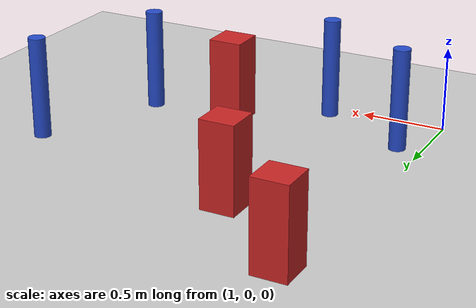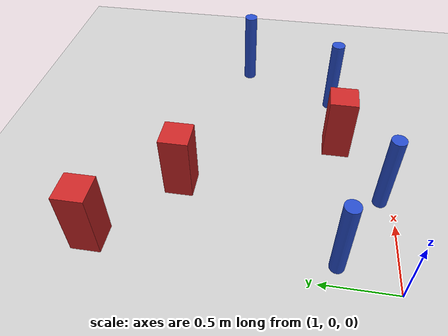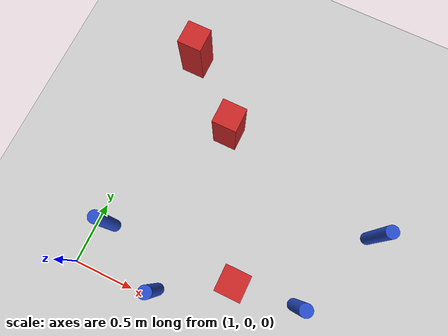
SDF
<sdf version="1.6">
 <world name="default">
  <model name="ground_plane">
   <static>1</static>
   <link name="link">
    <collision name="collision">
     <geometry><plane><normal>0 0 1</normal><size>100 100</size></plane></geometry>
     <surface><friction><ode><mu>100</mu><mu2>50</mu2></ode></friction></surface>
    </collision>
    <visual name="visual">
     <cast_shadows>0</cast_shadows>
     <geometry><plane><normal>0 0 1</normal><size>100 100</size></plane></geometry>
     <material>
      <ambient>1.0 1.0 1.0 1.0</ambient>
      <diffuse>0.8 0.8 0.8 1.0</diffuse>
      <specular>0.01 0.01 0.01 1.000000</specular>
     </material>
    </visual>
   </link>
  </model>
  <model name="pole_obstacle55">
   <static>true</static>
   <pose>2.70172302233 0.445536969924 -9.47619616065e-06 5.49618799738e-07 2.36310414074e-07 -1.55090534794e-07</pose>
   <link name="link">
    <pose>0 0 0.3 0 -0 0</pose>
    <inertial>
     <mass>1</mass>
     <inertia><ixx>0.145833</ixx><ixy>0</ixy><ixz>0</ixz><iyy>0.145833</iyy><iyz>0</iyz><izz>0.125</izz></inertia>
    </inertial>
    <collision name="collision">
     <geometry><cylinder><radius>0.05</radius><length>.6</length></cylinder></geometry>
    </collision>
    <visual name="visual">
     <geometry><cylinder><radius>0.05</radius><length>.6</length></cylinder></geometry>
     <material>
      <script><name>Gazebo/Blue</name><uri>file://media/materials/scripts/gazebo.material</uri></script>
     </material>
    </visual>
   </link>
  </model>
  <model name="square_post_obstacle87">
   <static>true</static>
   <pose>2.19317262747 0.392966858584 -6.11067671241e-07 -5.50515727128e-06 -8.79689657224e-07 2.37013304536e-05</pose>
   <link name="link">
    <pose>0 0 0.25 0 -0 0</pose>
    <inertial>
     <mass>100</mass>
     <inertia>
      <ixx>0.166667</ixx>
      <ixy>0</ixy>
      <ixz>0</ixz>
      <iyy>0.166667</iyy>
      <iyz>0</iyz>
      <izz>0.166667</izz>
     </inertia>
    </inertial>
    <collision name="collision"><geometry><box><size>.2 .2 .5</size></box></geometry></collision>
    <visual name="visual">
     <geometry><box><size>.2 .2 .5</size></box></geometry>
     <material>
      <script><name>Gazebo/Red</name><uri>file://media/materials/scripts/gazebo.material</uri></script>
     </material>
    </visual>
   </link>
  </model>
  <model name="pole_obstacle100">
   <static>true</static>
   <pose>1.68849661687 0.0884509182559 -9.47619616065e-06 5.49618799737e-07 2.36310414064e-07 -1.55090534797e-07</pose>
   <link name="link">
    <pose>0 0 0.3 0 -0 0</pose>
    <inertial>
     <mass>1</mass>
     <inertia><ixx>0.145833</ixx><ixy>0</ixy><ixz>0</ixz><iyy>0.145833</iyy><iyz>0</iyz><izz>0.125</izz></inertia>
    </inertial>
    <collision name="collision">
     <geometry><cylinder><radius>0.05</radius><length>.6</length></cylinder></geometry>
    </collision>
    <visual name="visual">
     <geometry><cylinder><radius>0.05</radius><length>.6</length></cylinder></geometry>
     <material>
      <script><name>Gazebo/Blue</name><uri>file://media/materials/scripts/gazebo.material</uri></script>
     </material>
    </visual>
   </link>
  </model>
  <model name="pole_obstacle102">
   <static>true</static>
   <pose>3.02983289638 1.17300933637 -9.47619616065e-06 5.49618799737e-07 2.36310414072e-07 -1.55090534793e-07</pose>
   <link name="link">
    <pose>0 0 0.3 0 -0 0</pose>
    <inertial>
     <mass>1</mass>
     <inertia><ixx>0.145833</ixx><ixy>0</ixy><ixz>0</ixz><iyy>0.145833</iyy><iyz>0</iyz><izz>0.125</izz></inertia>
    </inertial>
    <collision name="collision">
     <geometry><cylinder><radius>0.05</radius><length>.6</length></cylinder></geometry>
    </collision>
    <visual name="visual">
     <geometry><cylinder><radius>0.05</radius><length>.6</length></cylinder></geometry>
     <material>
      <script><name>Gazebo/Blue</name><uri>file://media/materials/scripts/gazebo.material</uri></script>
     </material>
    </visual>
   </link>
  </model>
  <model name="square_post_obstacle157">
   <static>true</static>
   <pose>1.6458032219 1.48368549345 -6.11067671241e-07 -5.50515727128e-06 -8.79689657224e-07 2.37013304536e-05</pose>
   <link name="link">
    <pose>0 0 0.25 0 -0 0</pose>
    <inertial>
     <mass>100</mass>
     <inertia>
      <ixx>0.166667</ixx>
      <ixy>0</ixy>
      <ixz>0</ixz>
      <iyy>0.166667</iyy>
      <iyz>0</iyz>
      <izz>0.166667</izz>
     </inertia>
    </inertial>
    <collision name="collision"><geometry><box><size>.2 .2 .5</size></box></geometry></collision>
    <visual name="visual">
     <geometry><box><size>.2 .2 .5</size></box></geometry>
     <material>
      <script><name>Gazebo/Red</name><uri>file://media/materials/scripts/gazebo.material</uri></script>
     </material>
    </visual>
   </link>
  </model>
  <model name="pole_obstacle175">
   <static>true</static>
   <pose>1.13930284414 0.383257024781 -9.47619616065e-06 5.49618799737e-07 2.36310414064e-07 -1.55090534799e-07</pose>
   <link name="link">
    <pose>0 0 0.3 0 -0 0</pose>
    <inertial>
     <mass>1</mass>
     <inertia><ixx>0.145833</ixx><ixy>0</ixy><ixz>0</ixz><iyy>0.145833</iyy><iyz>0</iyz><izz>0.125</izz></inertia>
    </inertial>
    <collision name="collision">
     <geometry><cylinder><radius>0.05</radius><length>.6</length></cylinder></geometry>
    </collision>
    <visual name="visual">
     <geometry><cylinder><radius>0.05</radius><length>.6</length></cylinder></geometry>
     <material>
      <script><name>Gazebo/Blue</name><uri>file://media/materials/scripts/gazebo.material</uri></script>
     </material>
    </visual>
   </link>
  </model>
  <model name="square_post_obstacle228">
   <static>true</static>
   <pose>1.1141999502 1.95731997688 -6.11067671241e-07 -5.50515727128e-06 -8.79689657224e-07 2.37013304536e-05</pose>
   <link name="link">
    <pose>0 0 0.25 0 -0 0</pose>
    <inertial>
     <mass>100</mass>
     <inertia>
      <ixx>0.166667</ixx>
      <ixy>0</ixy>
      <ixz>0</ixz>
      <iyy>0.166667</iyy>
      <iyz>0</iyz>
      <izz>0.166667</izz>
     </inertia>
    </inertial>
    <collision name="collision"><geometry><box><size>.2 .2 .5</size></box></geometry></collision>
    <visual name="visual">
     <geometry><box><size>.2 .2 .5</size></box></geometry>
     <material>
      <script><name>Gazebo/Red</name><uri>file://media/materials/scripts/gazebo.material</uri></script>
     </material>
    </visual>
   </link>
  </model>
 </world>
</sdf>
